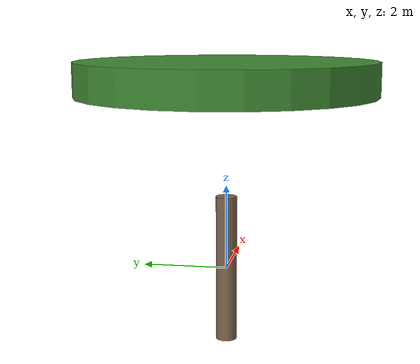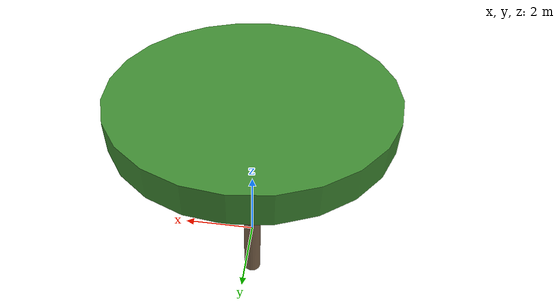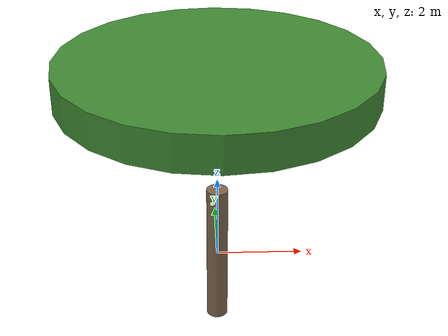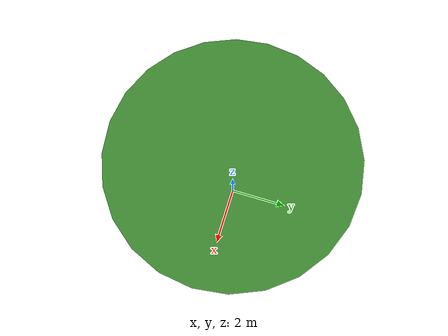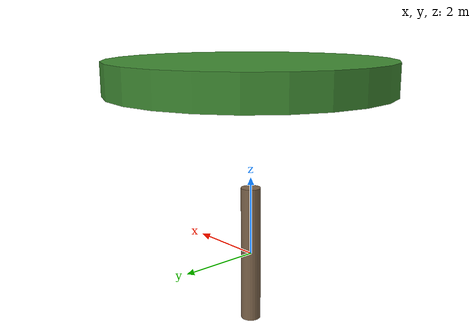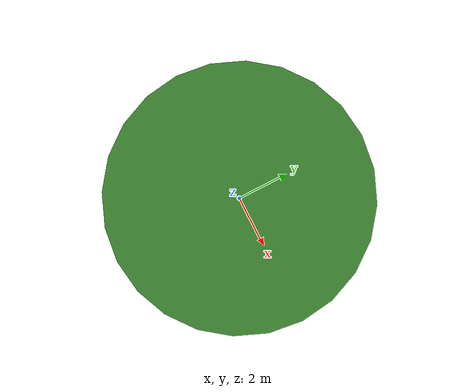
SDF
<?xml version="1.0"?>
<sdf version="1.9">
  <model name="acacia_tree">
    <static>true</static>
    <link name="trunk">
      <collision name="trunk_col">
        <geometry><cylinder><radius>0.2</radius><length>3.5</length></cylinder></geometry>
      </collision>
      <visual name="trunk_vis">
        <geometry><cylinder><radius>0.25</radius><length>3.5</length></cylinder></geometry>
        <material>
          <ambient>0.45 0.35 0.25 1</ambient>
          <diffuse>0.5 0.4 0.3 1</diffuse>
          <specular>0.05 0.05 0.05 1</specular>
        </material>
      </visual>
    </link>
    <link name="canopy">
      <pose>0 0 4.5 0 0 0</pose>
      <collision name="canopy_col">
        <geometry><cylinder><radius>3</radius><length>0.6</length></cylinder></geometry>
      </collision>
      <visual name="canopy_vis">
        <geometry><cylinder><radius>3.5</radius><length>0.8</length></cylinder></geometry>
        <material>
          <ambient>0.2 0.5 0.15 1</ambient>
          <diffuse>0.25 0.55 0.2 1</diffuse>
          <specular>0.15 0.3 0.1 1</specular>
        </material>
      </visual>
    </link>
  </model>
</sdf>
